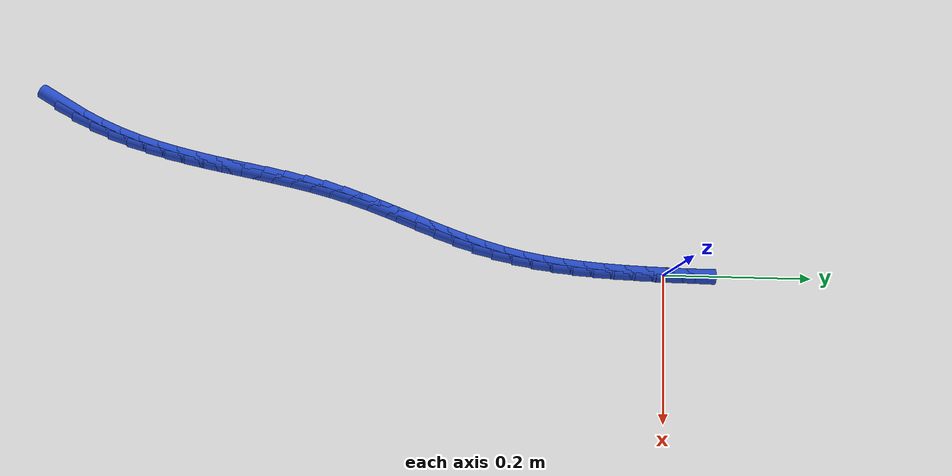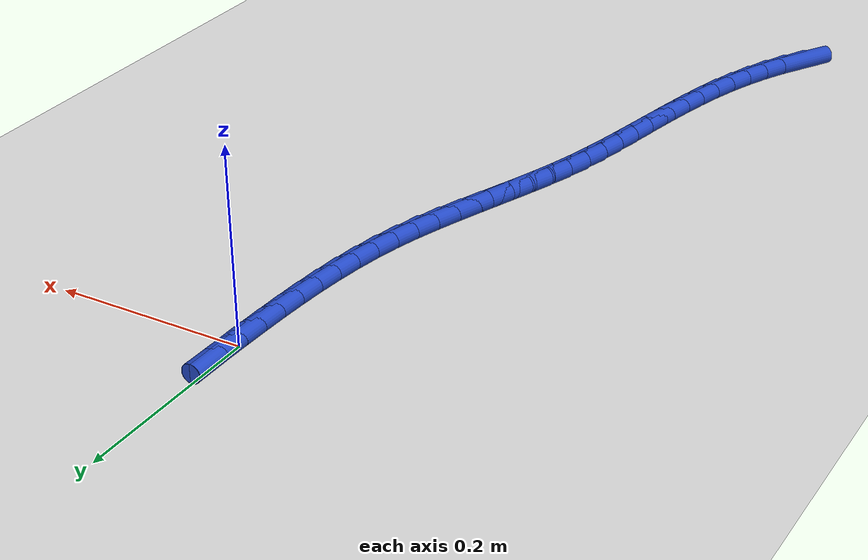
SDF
<sdf version="1.6">
 <world name="default">
  <model name="ground_plane">
   <static>1</static>
   <link name="link">
    <collision name="collision">
     <geometry><plane><normal>0 0 1</normal><size>100 100</size></plane></geometry>
     <surface><friction><ode><mu>100</mu><mu2>50</mu2></ode></friction></surface>
    </collision>
    <visual name="visual">
     <cast_shadows>0</cast_shadows>
     <geometry><plane><normal>0 0 1</normal><size>100 100</size></plane></geometry>
     <material>
      <script><uri>file://media/materials/scripts/gazebo.material</uri><name>Gazebo/WhiteGlow</name></script>
     </material>
    </visual>
   </link>
  </model>
  <model name="line">
   <link name="link_0">
    <pose>5.366800753803247e-18 2.7755575615628914e-17 0.01 0 1.57 1.5487285073971115</pose>
    <collision name="collision">
     <geometry><cylinder><radius>0.01</radius><length>0.08</length></cylinder></geometry>
    </collision>
    <visual name="visual">
     <material>
      <script><name>Gazebo/Blue</name><uri>file://media/materials/scripts/gazebo.material</uri></script>
     </material>
     <geometry><cylinder><radius>0.01</radius><length>0.08</length></cylinder></geometry>
    </visual>
   </link>
   <link name="link_1">
    <pose>0.000620939584541092 0.02813321847680312 0.01 0 1.57 1.5651818861590454</pose>
    <collision name="collision">
     <geometry><cylinder><radius>0.01</radius><length>0.08</length></cylinder></geometry>
    </collision>
    <visual name="visual">
     <material>
      <script><name>Gazebo/Blue</name><uri>file://media/materials/scripts/gazebo.material</uri></script>
     </material>
     <geometry><cylinder><radius>0.01</radius><length>0.08</length></cylinder></geometry>
    </visual>
   </link>
   <link name="link_249">
    <pose>-0.21327956505320436 -0.818390390392419 0.01 0 1.57 1.0408317604066033</pose>
    <collision name="collision">
     <geometry><cylinder><radius>0.01</radius><length>0.08</length></cylinder></geometry>
    </collision>
    <visual name="visual">
     <material>
      <script><name>Gazebo/Blue</name><uri>file://media/materials/scripts/gazebo.material</uri></script>
     </material>
     <geometry><cylinder><radius>0.01</radius><length>0.08</length></cylinder></geometry>
    </visual>
   </link>
   <link name="link_250">
    <pose>-0.19876660743182445 -0.7936187309859978 0.01 0 1.57 1.1067603548742773</pose>
    <collision name="collision">
     <geometry><cylinder><radius>0.01</radius><length>0.08</length></cylinder></geometry>
    </collision>
    <visual name="visual">
     <material>
      <script><name>Gazebo/Blue</name><uri>file://media/materials/scripts/gazebo.material</uri></script>
     </material>
     <geometry><cylinder><radius>0.01</radius><length>0.08</length></cylinder></geometry>
    </visual>
   </link>
   <link name="link_251">
    <pose>-0.18616412531533533 -0.7684382194449695 0.01 0 1.57 1.1670734039433608</pose>
    <collision name="collision">
     <geometry><cylinder><radius>0.01</radius><length>0.08</length></cylinder></geometry>
    </collision>
    <visual name="visual">
     <material>
      <script><name>Gazebo/Blue</name><uri>file://media/materials/scripts/gazebo.material</uri></script>
     </material>
     <geometry><cylinder><radius>0.01</radius><length>0.08</length></cylinder></geometry>
    </visual>
   </link>
   <link name="link_252">
    <pose>-0.17525278279812725 -0.7428960038203418 0.01 0 1.57 1.2207594567207232</pose>
    <collision name="collision">
     <geometry><cylinder><radius>0.01</radius><length>0.08</length></cylinder></geometry>
    </collision>
    <visual name="visual">
     <material>
      <script><name>Gazebo/Blue</name><uri>file://media/materials/scripts/gazebo.material</uri></script>
     </material>
     <geometry><cylinder><radius>0.01</radius><length>0.08</length></cylinder></geometry>
    </visual>
   </link>
   <link name="link_253">
    <pose>-0.16581324397459143 -0.7170392321631247 0.01 0 1.57 1.2671003443180138</pose>
    <collision name="collision">
     <geometry><cylinder><radius>0.01</radius><length>0.08</length></cylinder></geometry>
    </collision>
    <visual name="visual">
     <material>
      <script><name>Gazebo/Blue</name><uri>file://media/materials/scripts/gazebo.material</uri></script>
     </material>
     <geometry><cylinder><radius>0.01</radius><length>0.08</length></cylinder></geometry>
    </visual>
   </link>
   <link name="link_254">
    <pose>-0.15762617293911815 -0.6909150525243258 0.01 0 1.57 1.3056366059224773</pose>
    <collision name="collision">
     <geometry><cylinder><radius>0.01</radius><length>0.08</length></cylinder></geometry>
    </collision>
    <visual name="visual">
     <material>
      <script><name>Gazebo/Blue</name><uri>file://media/materials/scripts/gazebo.material</uri></script>
     </material>
     <geometry><cylinder><radius>0.01</radius><length>0.08</length></cylinder></geometry>
    </visual>
   </link>
   <link name="link_255">
    <pose>-0.1504722337860978 -0.6645706129549531 0.01 0 1.57 1.3361097577917789</pose>
    <collision name="collision">
     <geometry><cylinder><radius>0.01</radius><length>0.08</length></cylinder></geometry>
    </collision>
    <visual name="visual">
     <material>
      <script><name>Gazebo/Blue</name><uri>file://media/materials/scripts/gazebo.material</uri></script>
     </material>
     <geometry><cylinder><radius>0.01</radius><length>0.08</length></cylinder></geometry>
    </visual>
   </link>
   <link name="link_256">
    <pose>-0.1441320906099211 -0.6380530615060154 0.01 0 1.57 1.3583986445083822</pose>
    <collision name="collision">
     <geometry><cylinder><radius>0.01</radius><length>0.08</length></cylinder></geometry>
    </collision>
    <visual name="visual">
     <material>
      <script><name>Gazebo/Blue</name><uri>file://media/materials/scripts/gazebo.material</uri></script>
     </material>
     <geometry><cylinder><radius>0.01</radius><length>0.08</length></cylinder></geometry>
    </visual>
   </link>
   <link name="link_257">
    <pose>-0.1383864075049785 -0.6114095462285205 0.01 0 1.57 1.3724620597588966</pose>
    <collision name="collision">
     <geometry><cylinder><radius>0.01</radius><length>0.08</length></cylinder></geometry>
    </collision>
    <visual name="visual">
     <material>
      <script><name>Gazebo/Blue</name><uri>file://media/materials/scripts/gazebo.material</uri></script>
     </material>
     <geometry><cylinder><radius>0.01</radius><length>0.08</length></cylinder></geometry>
    </visual>
   </link>
   <link name="link_258">
    <pose>-0.13301584856566057 -0.5846872151734771 0.01 0 1.57 1.3782943965294963</pose>
    <collision name="collision">
     <geometry><cylinder><radius>0.01</radius><length>0.08</length></cylinder></geometry>
    </collision>
    <visual name="visual">
     <material>
      <script><name>Gazebo/Blue</name><uri>file://media/materials/scripts/gazebo.material</uri></script>
     </material>
     <geometry><cylinder><radius>0.01</radius><length>0.08</length></cylinder></geometry>
    </visual>
   </link>
   <link name="link_259">
    <pose>-0.12780107788635792 -0.5579332163918935 0.01 0 1.57 1.375897160689768</pose>
    <collision name="collision">
     <geometry><cylinder><radius>0.01</radius><length>0.08</length></cylinder></geometry>
    </collision>
    <visual name="visual">
     <material>
      <script><name>Gazebo/Blue</name><uri>file://media/materials/scripts/gazebo.material</uri></script>
     </material>
     <geometry><cylinder><radius>0.01</radius><length>0.08</length></cylinder></geometry>
    </visual>
   </link>
   <link name="link_260">
    <pose>-0.12252275956146103 -0.5311946979347777 0.01 0 1.57 1.3652671188103946</pose>
    <collision name="collision">
     <geometry><cylinder><radius>0.01</radius><length>0.08</length></cylinder></geometry>
    </collision>
    <visual name="visual">
     <material>
      <script><name>Gazebo/Blue</name><uri>file://media/materials/scripts/gazebo.material</uri></script>
     </material>
     <geometry><cylinder><radius>0.01</radius><length>0.08</length></cylinder></geometry>
    </visual>
   </link>
   <link name="link_261">
    <pose>-0.11696155768536035 -0.5045188078531376 0.01 0 1.57 1.3464011717018627</pose>
    <collision name="collision">
     <geometry><cylinder><radius>0.01</radius><length>0.08</length></cylinder></geometry>
    </collision>
    <visual name="visual">
     <material>
      <script><name>Gazebo/Blue</name><uri>file://media/materials/scripts/gazebo.material</uri></script>
     </material>
     <geometry><cylinder><radius>0.01</radius><length>0.08</length></cylinder></geometry>
    </visual>
   </link>
   <link name="link_262">
    <pose>-0.11089813635244673 -0.4779526941979829 0.01 0 1.57 1.3193179656867526</pose>
    <collision name="collision">
     <geometry><cylinder><radius>0.01</radius><length>0.08</length></cylinder></geometry>
    </collision>
    <visual name="visual">
     <material>
      <script><name>Gazebo/Blue</name><uri>file://media/materials/scripts/gazebo.material</uri></script>
     </material>
     <geometry><cylinder><radius>0.01</radius><length>0.08</length></cylinder></geometry>
    </visual>
   </link>
   <link name="link_263">
    <pose>-0.1041131596571106 -0.4515435050203215 0.01 0 1.57 1.2842079500236925</pose>
    <collision name="collision">
     <geometry><cylinder><radius>0.01</radius><length>0.08</length></cylinder></geometry>
    </collision>
    <visual name="visual">
     <material>
      <script><name>Gazebo/Blue</name><uri>file://media/materials/scripts/gazebo.material</uri></script>
     </material>
     <geometry><cylinder><radius>0.01</radius><length>0.08</length></cylinder></geometry>
    </visual>
   </link>
   <link name="link_264">
    <pose>-0.0963902951407858 -0.42533775302181726 0.01 0 1.57 1.2482417021171086</pose>
    <collision name="collision">
     <geometry><cylinder><radius>0.01</radius><length>0.08</length></cylinder></geometry>
    </collision>
    <visual name="visual">
     <material>
      <script><name>Gazebo/Blue</name><uri>file://media/materials/scripts/gazebo.material</uri></script>
     </material>
     <geometry><cylinder><radius>0.01</radius><length>0.08</length></cylinder></geometry>
    </visual>
   </link>
   <link name="link_265">
    <pose>-0.08770182982105681 -0.39934205033031744 0.01 0 1.57 1.2224556924750247</pose>
    <collision name="collision">
     <geometry><cylinder><radius>0.01</radius><length>0.08</length></cylinder></geometry>
    </collision>
    <visual name="visual">
     <material>
      <script><name>Gazebo/Blue</name><uri>file://media/materials/scripts/gazebo.material</uri></script>
     </material>
     <geometry><cylinder><radius>0.01</radius><length>0.08</length></cylinder></geometry>
    </visual>
   </link>
   <link name="link_266">
    <pose>-0.07831735360106333 -0.37350011760576185 0.01 0 1.57 1.2076579607184055</pose>
    <collision name="collision">
     <geometry><cylinder><radius>0.01</radius><length>0.08</length></cylinder></geometry>
    </collision>
    <visual name="visual">
     <material>
      <script><name>Gazebo/Blue</name><uri>file://media/materials/scripts/gazebo.material</uri></script>
     </material>
     <geometry><cylinder><radius>0.01</radius><length>0.08</length></cylinder></geometry>
    </visual>
   </link>
   <link name="link_267">
    <pose>-0.0685326173666739 -0.34775014141244 0.01 0 1.57 1.2037240441985089</pose>
    <collision name="collision">
     <geometry><cylinder><radius>0.01</radius><length>0.08</length></cylinder></geometry>
    </collision>
    <visual name="visual">
     <material>
      <script><name>Gazebo/Blue</name><uri>file://media/materials/scripts/gazebo.material</uri></script>
     </material>
     <geometry><cylinder><radius>0.01</radius><length>0.08</length></cylinder></geometry>
    </visual>
   </link>
   <link name="link_268">
    <pose>-0.05864337200375712 -0.32203030831464136 0.01 0 1.57 1.2106240833566104</pose>
    <collision name="collision">
     <geometry><cylinder><radius>0.01</radius><length>0.08</length></cylinder></geometry>
    </collision>
    <visual name="visual">
     <material>
      <script><name>Gazebo/Blue</name><uri>file://media/materials/scripts/gazebo.material</uri></script>
     </material>
     <geometry><cylinder><radius>0.01</radius><length>0.08</length></cylinder></geometry>
    </visual>
   </link>
   <link name="link_269">
    <pose>-0.04894536839818146 -0.29627880487665537 0.01 0 1.57 1.2284362564330655</pose>
    <collision name="collision">
     <geometry><cylinder><radius>0.01</radius><length>0.08</length></cylinder></geometry>
    </collision>
    <visual name="visual">
     <material>
      <script><name>Gazebo/Blue</name><uri>file://media/materials/scripts/gazebo.material</uri></script>
     </material>
     <geometry><cylinder><radius>0.01</radius><length>0.08</length></cylinder></geometry>
    </visual>
   </link>
   <link name="link_270">
    <pose>-0.03973435743581521 -0.2704338176627709 0.01 0 1.57 1.257323836279439</pose>
    <collision name="collision">
     <geometry><cylinder><radius>0.01</radius><length>0.08</length></cylinder></geometry>
    </collision>
    <visual name="visual">
     <material>
      <script><name>Gazebo/Blue</name><uri>file://media/materials/scripts/gazebo.material</uri></script>
     </material>
     <geometry><cylinder><radius>0.01</radius><length>0.08</length></cylinder></geometry>
    </visual>
   </link>
   <link name="link_271">
    <pose>-0.03130609000252748 -0.24443353323727884 0.01 0 1.57 1.297461017469338</pose>
    <collision name="collision">
     <geometry><cylinder><radius>0.01</radius><length>0.08</length></cylinder></geometry>
    </collision>
    <visual name="visual">
     <material>
      <script><name>Gazebo/Blue</name><uri>file://media/materials/scripts/gazebo.material</uri></script>
     </material>
     <geometry><cylinder><radius>0.01</radius><length>0.08</length></cylinder></geometry>
    </visual>
   </link>
   <link name="link_272">
    <pose>-0.023955999678222675 -0.2182161924764993 0.01 0 1.57 1.3447338661231745</pose>
    <collision name="collision">
     <geometry><cylinder><radius>0.01</radius><length>0.08</length></cylinder></geometry>
    </collision>
    <visual name="visual">
     <material>
      <script><name>Gazebo/Blue</name><uri>file://media/materials/scripts/gazebo.material</uri></script>
     </material>
     <geometry><cylinder><radius>0.01</radius><length>0.08</length></cylinder></geometry>
    </visual>
   </link>
   <link name="link_273">
    <pose>-0.017866498443805775 -0.19173938172552438 0.01 0 1.57 1.3885580651815286</pose>
    <collision name="collision">
     <geometry><cylinder><radius>0.01</radius><length>0.08</length></cylinder></geometry>
    </collision>
    <visual name="visual">
     <material>
      <script><name>Gazebo/Blue</name><uri>file://media/materials/scripts/gazebo.material</uri></script>
     </material>
     <geometry><cylinder><radius>0.01</radius><length>0.08</length></cylinder></geometry>
    </visual>
   </link>
   <link name="link_274">
    <pose>-0.01294046168319675 -0.16500853452463102 0.01 0 1.57 1.4271196396590968</pose>
    <collision name="collision">
     <geometry><cylinder><radius>0.01</radius><length>0.08</length></cylinder></geometry>
    </collision>
    <visual name="visual">
     <material>
      <script><name>Gazebo/Blue</name><uri>file://media/materials/scripts/gazebo.material</uri></script>
     </material>
     <geometry><cylinder><radius>0.01</radius><length>0.08</length></cylinder></geometry>
    </visual>
   </link>
   <link name="link_275">
    <pose>-0.009038300198725828 -0.13803635291183744 0.01 0 1.57 1.4603002487658439</pose>
    <collision name="collision">
     <geometry><cylinder><radius>0.01</radius><length>0.08</length></cylinder></geometry>
    </collision>
    <visual name="visual">
     <material>
      <script><name>Gazebo/Blue</name><uri>file://media/materials/scripts/gazebo.material</uri></script>
     </material>
     <geometry><cylinder><radius>0.01</radius><length>0.08</length></cylinder></geometry>
    </visual>
   </link>
   <link name="link_276">
    <pose>-0.006020424792723213 -0.11083553892516167 0.01 0 1.57 1.4880734856217377</pose>
    <collision name="collision">
     <geometry><cylinder><radius>0.01</radius><length>0.08</length></cylinder></geometry>
    </collision>
    <visual name="visual">
     <material>
      <script><name>Gazebo/Blue</name><uri>file://media/materials/scripts/gazebo.material</uri></script>
     </material>
     <geometry><cylinder><radius>0.01</radius><length>0.08</length></cylinder></geometry>
    </visual>
   </link>
   <link name="link_277">
    <pose>-0.003747246267519115 -0.08341879460262204 0.01 0 1.57 1.5104759472152276</pose>
    <collision name="collision">
     <geometry><cylinder><radius>0.01</radius><length>0.08</length></cylinder></geometry>
    </collision>
    <visual name="visual">
     <material>
      <script><name>Gazebo/Blue</name><uri>file://media/materials/scripts/gazebo.material</uri></script>
     </material>
     <geometry><cylinder><radius>0.01</radius><length>0.08</length></cylinder></geometry>
    </visual>
   </link>
   <link name="link_278">
    <pose>-0.002079175425443744 -0.05579882198223658 0.01 0 1.57 1.5275822982054195</pose>
    <collision name="collision">
     <geometry><cylinder><radius>0.01</radius><length>0.08</length></cylinder></geometry>
    </collision>
    <visual name="visual">
     <material>
      <script><name>Gazebo/Blue</name><uri>file://media/materials/scripts/gazebo.material</uri></script>
     </material>
     <geometry><cylinder><radius>0.01</radius><length>0.08</length></cylinder></geometry>
    </visual>
   </link>
   <link name="link_279">
    <pose>-0.00087662306882728 -0.027988323102022695 0.01 0 1.57 1.53948553420106</pose>
    <collision name="collision">
     <geometry><cylinder><radius>0.01</radius><length>0.08</length></cylinder></geometry>
    </collision>
    <visual name="visual">
     <material>
      <script><name>Gazebo/Blue</name><uri>file://media/materials/scripts/gazebo.material</uri></script>
     </material>
     <geometry><cylinder><radius>0.01</radius><length>0.08</length></cylinder></geometry>
    </visual>
   </link>
   <link name="link_280">
    <pose>-2.710505431213761e-18 -1.8735013540549517e-16 0.01 0 1.57 1.5462826412512525</pose>
    <collision name="collision">
     <geometry><cylinder><radius>0.01</radius><length>0.08</length></cylinder></geometry>
    </collision>
    <visual name="visual">
     <material>
      <script><name>Gazebo/Blue</name><uri>file://media/materials/scripts/gazebo.material</uri></script>
     </material>
     <geometry><cylinder><radius>0.01</radius><length>0.08</length></cylinder></geometry>
    </visual>
   </link>
   <link name="link_281">
    <pose>0.00069028297870792 0.028153445285813584 0.01 0 1.57 1.5480653049698367</pose>
    <collision name="collision">
     <geometry><cylinder><radius>0.01</radius><length>0.08</length></cylinder></geometry>
    </collision>
    <visual name="visual">
     <material>
      <script><name>Gazebo/Blue</name><uri>file://media/materials/scripts/gazebo.material</uri></script>
     </material>
     <geometry><cylinder><radius>0.01</radius><length>0.08</length></cylinder></geometry>
    </visual>
   </link>
  </model>
 </world>
</sdf>
